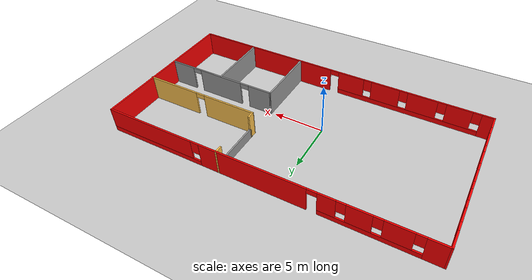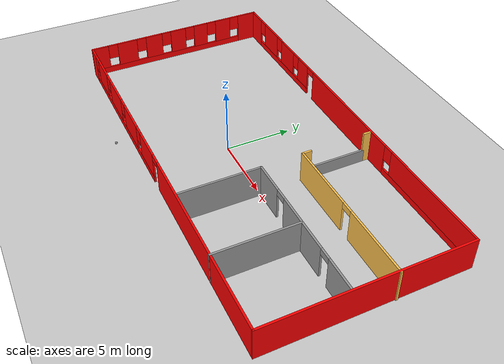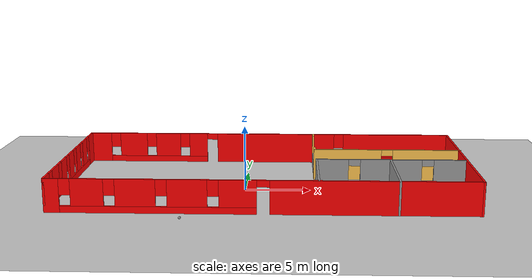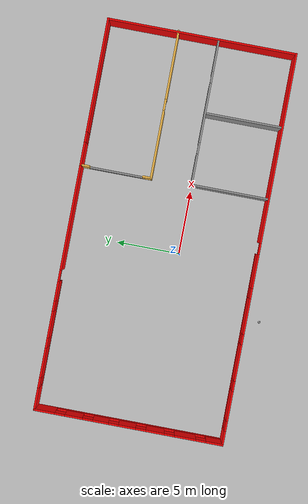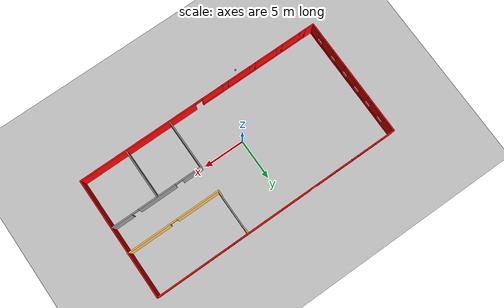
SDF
<sdf version="1.6">
 <world name="default">
  <light name="sun" type="directional">
   <pose>0 0 10 0 -0 0</pose>
   <diffuse>0.8 0.8 0.8 1</diffuse>
   <specular>0.2 0.2 0.2 1</specular>
   <attenuation>
    <range>1000</range>
    <constant>0.9</constant>
    <linear>0.01</linear>
    <quadratic>0.001</quadratic>
   </attenuation>
   <direction>-0.5 0.1 -0.9</direction>
  </light>
  <model name="ground_plane">
   <static>1</static>
   <link name="link">
    <collision name="collision">
     <geometry><plane><normal>0 0 1</normal><size>100 100</size></plane></geometry>
     <surface><friction><ode><mu>100</mu><mu2>50</mu2></ode></friction></surface>
    </collision>
    <visual name="visual">
     <cast_shadows>0</cast_shadows>
     <geometry><plane><normal>0 0 1</normal><size>100 100</size></plane></geometry>
     <material>
      <script><uri>file://media/materials/scripts/gazebo.material</uri><name>Gazebo/Grey</name></script>
     </material>
    </visual>
   </link>
  </model>
  <gravity>0 0 -9.8</gravity>
  <magnetic_field>6e-06 2.3e-05 -4.2e-05</magnetic_field>
  <atmosphere type="adiabatic"/>
  <physics name="default_physics" default="0" type="ode">
   <max_step_size>0.001</max_step_size>
   <real_time_factor>1</real_time_factor>
   <real_time_update_rate>1000</real_time_update_rate>
  </physics>
  <scene><ambient>0.4 0.4 0.4 1</ambient><background>0.7 0.7 0.7 1</background><shadows>1</shadows></scene>
  <spherical_coordinates>
   <surface_model>EARTH_WGS84</surface_model>
   <latitude_deg>0</latitude_deg>
   <longitude_deg>0</longitude_deg>
   <elevation>0</elevation>
   <heading_deg>0</heading_deg>
  </spherical_coordinates>
  <model name="my_building">
   <pose>1.5582 1.38276 0 0 -0 0</pose>
   <link name="Wall_31">
    <pose>-15.4662 0.001238 0 0 0 -1.5708</pose>
    <visual name="Wall_31_Visual_0">
     <pose>-6.66061 0 1.25 0 -0 0</pose>
     <geometry><box><size>1.67879 0.15 2.5</size></box></geometry>
     <material>
      <script><uri>file://media/materials/scripts/gazebo.material</uri><name>Gazebo/Grey</name></script>
      <ambient>1 0 0 1</ambient>
     </material>
     <meta><layer>0</layer></meta>
    </visual>
    <collision name="Wall_31_Collision_0">
     <geometry><box><size>1.67879 0.15 2.5</size></box></geometry>
     <pose>-6.66061 0 1.25 0 -0 0</pose>
    </collision>
    <visual name="Wall_31_Visual_1">
     <pose>0.839395 0 0.25 0 -0 0</pose>
     <geometry><box><size>13.3212 0.15 0.5</size></box></geometry>
     <material>
      <script><uri>file://media/materials/scripts/gazebo.material</uri><name>Gazebo/Grey</name></script>
      <ambient>1 0 0 1</ambient>
     </material>
     <meta><layer>0</layer></meta>
    </visual>
    <collision name="Wall_31_Collision_1">
     <geometry><box><size>13.3212 0.15 0.5</size></box></geometry>
     <pose>0.839395 0 0.25 0 -0 0</pose>
    </collision>
    <visual name="Wall_31_Visual_2">
     <pose>-4.32618 0 1.5 0 -0 0</pose>
     <geometry><box><size>1.39006 0.15 2</size></box></geometry>
     <material>
      <script><uri>file://media/materials/scripts/gazebo.material</uri><name>Gazebo/Grey</name></script>
      <ambient>1 0 0 1</ambient>
     </material>
     <meta><layer>0</layer></meta>
    </visual>
    <collision name="Wall_31_Collision_2">
     <geometry><box><size>1.39006 0.15 2</size></box></geometry>
     <pose>-4.32618 0 1.5 0 -0 0</pose>
    </collision>
    <visual name="Wall_31_Visual_3">
     <pose>-2.21216 0 1.5 0 -0 0</pose>
     <geometry><box><size>1.23797 0.15 2</size></box></geometry>
     <material>
      <script><uri>file://media/materials/scripts/gazebo.material</uri><name>Gazebo/Grey</name></script>
      <ambient>1 0 0 1</ambient>
     </material>
     <meta><layer>0</layer></meta>
    </visual>
    <collision name="Wall_31_Collision_3">
     <geometry><box><size>1.23797 0.15 2</size></box></geometry>
     <pose>-2.21216 0 1.5 0 -0 0</pose>
    </collision>
    <visual name="Wall_31_Visual_4">
     <pose>-0.113355 0 1.5 0 -0 0</pose>
     <geometry><box><size>1.35964 0.15 2</size></box></geometry>
     <material>
      <script><uri>file://media/materials/scripts/gazebo.material</uri><name>Gazebo/Grey</name></script>
      <ambient>1 0 0 1</ambient>
     </material>
     <meta><layer>0</layer></meta>
    </visual>
    <collision name="Wall_31_Collision_4">
     <geometry><box><size>1.35964 0.15 2</size></box></geometry>
     <pose>-0.113355 0 1.5 0 -0 0</pose>
    </collision>
    <visual name="Wall_31_Visual_5">
     <pose>2.09191 0 1.5 0 -0 0</pose>
     <geometry><box><size>1.4509 0.15 2</size></box></geometry>
     <material>
      <script><uri>file://media/materials/scripts/gazebo.material</uri><name>Gazebo/Grey</name></script>
      <ambient>1 0 0 1</ambient>
     </material>
     <meta><layer>0</layer></meta>
    </visual>
    <collision name="Wall_31_Collision_5">
     <geometry><box><size>1.4509 0.15 2</size></box></geometry>
     <pose>2.09191 0 1.5 0 -0 0</pose>
    </collision>
    <visual name="Wall_31_Visual_6">
     <pose>4.46448 0 1.5 0 -0 0</pose>
     <geometry><box><size>1.69423 0.15 2</size></box></geometry>
     <material>
      <script><uri>file://media/materials/scripts/gazebo.material</uri><name>Gazebo/Grey</name></script>
      <ambient>1 0 0 1</ambient>
     </material>
     <meta><layer>0</layer></meta>
    </visual>
    <collision name="Wall_31_Collision_6">
     <geometry><box><size>1.69423 0.15 2</size></box></geometry>
     <pose>4.46448 0 1.5 0 -0 0</pose>
    </collision>
    <visual name="Wall_31_Visual_7">
     <pose>6.8058 0 1.5 0 -0 0</pose>
     <geometry><box><size>1.3884 0.15 2</size></box></geometry>
     <material>
      <script><uri>file://media/materials/scripts/gazebo.material</uri><name>Gazebo/Grey</name></script>
      <ambient>1 0 0 1</ambient>
     </material>
     <meta><layer>0</layer></meta>
    </visual>
    <collision name="Wall_31_Collision_7">
     <geometry><box><size>1.3884 0.15 2</size></box></geometry>
     <pose>6.8058 0 1.5 0 -0 0</pose>
    </collision>
    <visual name="Wall_31_Visual_8">
     <pose>-5.42121 0 1.9 0 -0 0</pose>
     <geometry><box><size>0.8 0.15 1.2</size></box></geometry>
     <material>
      <script><uri>file://media/materials/scripts/gazebo.material</uri><name>Gazebo/Grey</name></script>
      <ambient>1 0 0 1</ambient>
     </material>
     <meta><layer>0</layer></meta>
    </visual>
    <collision name="Wall_31_Collision_8">
     <geometry><box><size>0.8 0.15 1.2</size></box></geometry>
     <pose>-5.42121 0 1.9 0 -0 0</pose>
    </collision>
    <visual name="Wall_31_Visual_9">
     <pose>-3.23115 0 1.9 0 -0 0</pose>
     <geometry><box><size>0.8 0.15 1.2</size></box></geometry>
     <material>
      <script><uri>file://media/materials/scripts/gazebo.material</uri><name>Gazebo/Grey</name></script>
      <ambient>1 0 0 1</ambient>
     </material>
     <meta><layer>0</layer></meta>
    </visual>
    <collision name="Wall_31_Collision_9">
     <geometry><box><size>0.8 0.15 1.2</size></box></geometry>
     <pose>-3.23115 0 1.9 0 -0 0</pose>
    </collision>
    <visual name="Wall_31_Visual_10">
     <pose>-1.19318 0 1.9 0 -0 0</pose>
     <geometry><box><size>0.8 0.15 1.2</size></box></geometry>
     <material>
      <script><uri>file://media/materials/scripts/gazebo.material</uri><name>Gazebo/Grey</name></script>
      <ambient>1 0 0 1</ambient>
     </material>
     <meta><layer>0</layer></meta>
    </visual>
    <collision name="Wall_31_Collision_10">
     <geometry><box><size>0.8 0.15 1.2</size></box></geometry>
     <pose>-1.19318 0 1.9 0 -0 0</pose>
    </collision>
    <visual name="Wall_31_Visual_11">
     <pose>0.966466 0 1.9 0 -0 0</pose>
     <geometry><box><size>0.8 0.15 1.2</size></box></geometry>
     <material>
      <script><uri>file://media/materials/scripts/gazebo.material</uri><name>Gazebo/Grey</name></script>
      <ambient>1 0 0 1</ambient>
     </material>
     <meta><layer>0</layer></meta>
    </visual>
    <collision name="Wall_31_Collision_11">
     <geometry><box><size>0.8 0.15 1.2</size></box></geometry>
     <pose>0.966466 0 1.9 0 -0 0</pose>
    </collision>
    <visual name="Wall_31_Visual_12">
     <pose>3.21736 0 1.9 0 -0 0</pose>
     <geometry><box><size>0.8 0.15 1.2</size></box></geometry>
     <material>
      <script><uri>file://media/materials/scripts/gazebo.material</uri><name>Gazebo/Grey</name></script>
      <ambient>1 0 0 1</ambient>
     </material>
     <meta><layer>0</layer></meta>
    </visual>
    <collision name="Wall_31_Collision_12">
     <geometry><box><size>0.8 0.15 1.2</size></box></geometry>
     <pose>3.21736 0 1.9 0 -0 0</pose>
    </collision>
    <visual name="Wall_31_Visual_13">
     <pose>5.7116 0 1.9 0 -0 0</pose>
     <geometry><box><size>0.8 0.15 1.2</size></box></geometry>
     <material>
      <script><uri>file://media/materials/scripts/gazebo.material</uri><name>Gazebo/Grey</name></script>
      <ambient>1 0 0 1</ambient>
     </material>
     <meta><layer>0</layer></meta>
    </visual>
    <collision name="Wall_31_Collision_13">
     <geometry><box><size>0.8 0.15 1.2</size></box></geometry>
     <pose>5.7116 0 1.9 0 -0 0</pose>
    </collision>
   </link>
   <link name="Wall_32">
    <pose>-0.041243 -7.42376 0 0 -0 0</pose>
    <visual name="Wall_32_Visual_0">
     <pose>-14.9238 0 1.25 0 -0 0</pose>
     <geometry><box><size>1.15241 0.15 2.5</size></box></geometry>
     <material>
      <script><uri>file://media/materials/scripts/gazebo.material</uri><name>Gazebo/Grey</name></script>
      <ambient>1 0 0 1</ambient>
     </material>
     <meta><layer>0</layer></meta>
    </visual>
    <collision name="Wall_32_Collision_0">
     <geometry><box><size>1.15241 0.15 2.5</size></box></geometry>
     <pose>-14.9238 0 1.25 0 -0 0</pose>
    </collision>
    <visual name="Wall_32_Visual_1">
     <pose>8.01244 0 1.25 0 -0 0</pose>
     <geometry><box><size>14.9751 0.15 2.5</size></box></geometry>
     <material>
      <script><uri>file://media/materials/scripts/gazebo.material</uri><name>Gazebo/Grey</name></script>
      <ambient>1 0 0 1</ambient>
     </material>
     <meta><layer>0</layer></meta>
    </visual>
    <collision name="Wall_32_Collision_1">
     <geometry><box><size>14.9751 0.15 2.5</size></box></geometry>
     <pose>8.01244 0 1.25 0 -0 0</pose>
    </collision>
    <visual name="Wall_32_Visual_2">
     <pose>-7.36135 0 0.25 0 -0 0</pose>
     <geometry><box><size>13.9725 0.15 0.5</size></box></geometry>
     <material>
      <script><uri>file://media/materials/scripts/gazebo.material</uri><name>Gazebo/Grey</name></script>
      <ambient>1 0 0 1</ambient>
     </material>
     <meta><layer>0</layer></meta>
    </visual>
    <collision name="Wall_32_Collision_2">
     <geometry><box><size>13.9725 0.15 0.5</size></box></geometry>
     <pose>-7.36135 0 0.25 0 -0 0</pose>
    </collision>
    <visual name="Wall_32_Visual_3">
     <pose>-12.3659 0 1.5 0 -0 0</pose>
     <geometry><box><size>2.36342 0.15 2</size></box></geometry>
     <material>
      <script><uri>file://media/materials/scripts/gazebo.material</uri><name>Gazebo/Grey</name></script>
      <ambient>1 0 0 1</ambient>
     </material>
     <meta><layer>0</layer></meta>
    </visual>
    <collision name="Wall_32_Collision_3">
     <geometry><box><size>2.36342 0.15 2</size></box></geometry>
     <pose>-12.3659 0 1.5 0 -0 0</pose>
    </collision>
    <visual name="Wall_32_Visual_4">
     <pose>-8.94391 0 1.5 0 -0 0</pose>
     <geometry><box><size>2.88052 0.15 2</size></box></geometry>
     <material>
      <script><uri>file://media/materials/scripts/gazebo.material</uri><name>Gazebo/Grey</name></script>
      <ambient>1 0 0 1</ambient>
     </material>
     <meta><layer>0</layer></meta>
    </visual>
    <collision name="Wall_32_Collision_4">
     <geometry><box><size>2.88052 0.15 2</size></box></geometry>
     <pose>-8.94391 0 1.5 0 -0 0</pose>
    </collision>
    <visual name="Wall_32_Visual_5">
     <pose>-5.2786 0 1.5 0 -0 0</pose>
     <geometry><box><size>2.8501 0.15 2</size></box></geometry>
     <material>
      <script><uri>file://media/materials/scripts/gazebo.material</uri><name>Gazebo/Grey</name></script>
      <ambient>1 0 0 1</ambient>
     </material>
     <meta><layer>0</layer></meta>
    </visual>
    <collision name="Wall_32_Collision_5">
     <geometry><box><size>2.8501 0.15 2</size></box></geometry>
     <pose>-5.2786 0 1.5 0 -0 0</pose>
    </collision>
    <visual name="Wall_32_Visual_6">
     <pose>-1.71433 0 1.5 0 -0 0</pose>
     <geometry><box><size>2.67843 0.15 2</size></box></geometry>
     <material>
      <script><uri>file://media/materials/scripts/gazebo.material</uri><name>Gazebo/Grey</name></script>
      <ambient>1 0 0 1</ambient>
     </material>
     <meta><layer>0</layer></meta>
    </visual>
    <collision name="Wall_32_Collision_6">
     <geometry><box><size>2.67843 0.15 2</size></box></geometry>
     <pose>-1.71433 0 1.5 0 -0 0</pose>
    </collision>
    <visual name="Wall_32_Visual_7">
     <pose>-13.9476 0 1.9 0 -0 0</pose>
     <geometry><box><size>0.8 0.15 1.2</size></box></geometry>
     <material>
      <script><uri>file://media/materials/scripts/gazebo.material</uri><name>Gazebo/Grey</name></script>
      <ambient>1 0 0 1</ambient>
     </material>
     <meta><layer>0</layer></meta>
    </visual>
    <collision name="Wall_32_Collision_7">
     <geometry><box><size>0.8 0.15 1.2</size></box></geometry>
     <pose>-13.9476 0 1.9 0 -0 0</pose>
    </collision>
    <visual name="Wall_32_Visual_8">
     <pose>-10.7842 0 1.9 0 -0 0</pose>
     <geometry><box><size>0.8 0.15 1.2</size></box></geometry>
     <material>
      <script><uri>file://media/materials/scripts/gazebo.material</uri><name>Gazebo/Grey</name></script>
      <ambient>1 0 0 1</ambient>
     </material>
     <meta><layer>0</layer></meta>
    </visual>
    <collision name="Wall_32_Collision_8">
     <geometry><box><size>0.8 0.15 1.2</size></box></geometry>
     <pose>-10.7842 0 1.9 0 -0 0</pose>
    </collision>
    <visual name="Wall_32_Visual_9">
     <pose>-7.10365 0 1.9 0 -0 0</pose>
     <geometry><box><size>0.8 0.15 1.2</size></box></geometry>
     <material>
      <script><uri>file://media/materials/scripts/gazebo.material</uri><name>Gazebo/Grey</name></script>
      <ambient>1 0 0 1</ambient>
     </material>
     <meta><layer>0</layer></meta>
    </visual>
    <collision name="Wall_32_Collision_9">
     <geometry><box><size>0.8 0.15 1.2</size></box></geometry>
     <pose>-7.10365 0 1.9 0 -0 0</pose>
    </collision>
    <visual name="Wall_32_Visual_10">
     <pose>-3.45355 0 1.9 0 -0 0</pose>
     <geometry><box><size>0.8 0.15 1.2</size></box></geometry>
     <material>
      <script><uri>file://media/materials/scripts/gazebo.material</uri><name>Gazebo/Grey</name></script>
      <ambient>1 0 0 1</ambient>
     </material>
     <meta><layer>0</layer></meta>
    </visual>
    <collision name="Wall_32_Collision_10">
     <geometry><box><size>0.8 0.15 1.2</size></box></geometry>
     <pose>-3.45355 0 1.9 0 -0 0</pose>
    </collision>
    <visual name="Wall_32_Visual_11">
     <pose>0.074882 0 2.25 0 -0 0</pose>
     <geometry><box><size>0.9 0.15 0.5</size></box></geometry>
     <material>
      <script><uri>file://media/materials/scripts/gazebo.material</uri><name>Gazebo/Grey</name></script>
      <ambient>1 0 0 1</ambient>
     </material>
     <meta><layer>0</layer></meta>
    </visual>
    <collision name="Wall_32_Collision_11">
     <geometry><box><size>0.9 0.15 0.5</size></box></geometry>
     <pose>0.074882 0 2.25 0 -0 0</pose>
    </collision>
   </link>
   <link name="Wall_35">
    <pose>-0.041243 7.42624 0 0 -0 0</pose>
    <visual name="Wall_35_Visual_0">
     <pose>-14.6044 0 1.25 0 -0 0</pose>
     <geometry><box><size>1.79118 0.15 2.5</size></box></geometry>
     <material>
      <script><uri>file://media/materials/scripts/gazebo.material</uri><name>Gazebo/Grey</name></script>
      <ambient>1 0 0 1</ambient>
     </material>
     <meta><layer>0</layer></meta>
    </visual>
    <collision name="Wall_35_Collision_0">
     <geometry><box><size>1.79118 0.15 2.5</size></box></geometry>
     <pose>-14.6044 0 1.25 0 -0 0</pose>
    </collision>
    <visual name="Wall_35_Visual_1">
     <pose>0.647397 0 1.25 0 -0 0</pose>
     <geometry><box><size>10.1003 0.15 2.5</size></box></geometry>
     <material>
      <script><uri>file://media/materials/scripts/gazebo.material</uri><name>Gazebo/Grey</name></script>
      <ambient>1 0 0 1</ambient>
     </material>
     <meta><layer>0</layer></meta>
    </visual>
    <collision name="Wall_35_Collision_1">
     <geometry><box><size>10.1003 0.15 2.5</size></box></geometry>
     <pose>0.647397 0 1.25 0 -0 0</pose>
    </collision>
    <visual name="Wall_35_Visual_2">
     <pose>-9.50579 0 0.25 0 -0 0</pose>
     <geometry><box><size>8.40606 0.15 0.5</size></box></geometry>
     <material>
      <script><uri>file://media/materials/scripts/gazebo.material</uri><name>Gazebo/Grey</name></script>
      <ambient>1 0 0 1</ambient>
     </material>
     <meta><layer>0</layer></meta>
    </visual>
    <collision name="Wall_35_Collision_2">
     <geometry><box><size>8.40606 0.15 0.5</size></box></geometry>
     <pose>-9.50579 0 0.25 0 -0 0</pose>
    </collision>
    <visual name="Wall_35_Visual_3">
     <pose>10.5988 0 0.25 0 -0 0</pose>
     <geometry><box><size>9.80245 0.15 0.5</size></box></geometry>
     <material>
      <script><uri>file://media/materials/scripts/gazebo.material</uri><name>Gazebo/Grey</name></script>
      <ambient>1 0 0 1</ambient>
     </material>
     <meta><layer>0</layer></meta>
    </visual>
    <collision name="Wall_35_Collision_3">
     <geometry><box><size>9.80245 0.15 0.5</size></box></geometry>
     <pose>10.5988 0 0.25 0 -0 0</pose>
    </collision>
    <visual name="Wall_35_Visual_4">
     <pose>-11.7423 0 1.5 0 -0 0</pose>
     <geometry><box><size>2.333 0.15 2</size></box></geometry>
     <material>
      <script><uri>file://media/materials/scripts/gazebo.material</uri><name>Gazebo/Grey</name></script>
      <ambient>1 0 0 1</ambient>
     </material>
     <meta><layer>0</layer></meta>
    </visual>
    <collision name="Wall_35_Collision_4">
     <geometry><box><size>2.333 0.15 2</size></box></geometry>
     <pose>-11.7423 0 1.5 0 -0 0</pose>
    </collision>
    <visual name="Wall_35_Visual_5">
     <pose>-8.71578 0 1.5 0 -0 0</pose>
     <geometry><box><size>2.12008 0.15 2</size></box></geometry>
     <material>
      <script><uri>file://media/materials/scripts/gazebo.material</uri><name>Gazebo/Grey</name></script>
      <ambient>1 0 0 1</ambient>
     </material>
     <meta><layer>0</layer></meta>
    </visual>
    <collision name="Wall_35_Collision_5">
     <geometry><box><size>2.12008 0.15 2</size></box></geometry>
     <pose>-8.71578 0 1.5 0 -0 0</pose>
    </collision>
    <visual name="Wall_35_Visual_6">
     <pose>-6.07924 0 1.5 0 -0 0</pose>
     <geometry><box><size>1.55298 0.15 2</size></box></geometry>
     <material>
      <script><uri>file://media/materials/scripts/gazebo.material</uri><name>Gazebo/Grey</name></script>
      <ambient>1 0 0 1</ambient>
     </material>
     <meta><layer>0</layer></meta>
    </visual>
    <collision name="Wall_35_Collision_6">
     <geometry><box><size>1.55298 0.15 2</size></box></geometry>
     <pose>-6.07924 0 1.5 0 -0 0</pose>
    </collision>
    <visual name="Wall_35_Visual_7">
     <pose>-6.07924 0 1.5 0 -0 0</pose>
     <geometry><box><size>1.55298 0.15 2</size></box></geometry>
     <material>
      <script><uri>file://media/materials/scripts/gazebo.material</uri><name>Gazebo/Grey</name></script>
      <ambient>1 0 0 1</ambient>
     </material>
     <meta><layer>0</layer></meta>
    </visual>
    <collision name="Wall_35_Collision_7">
     <geometry><box><size>1.55298 0.15 2</size></box></geometry>
     <pose>-6.07924 0 1.5 0 -0 0</pose>
    </collision>
    <visual name="Wall_35_Visual_8">
     <pose>10.9988 0 1.5 0 -0 0</pose>
     <geometry><box><size>9.00245 0.15 2</size></box></geometry>
     <material>
      <script><uri>file://media/materials/scripts/gazebo.material</uri><name>Gazebo/Grey</name></script>
      <ambient>1 0 0 1</ambient>
     </material>
     <meta><layer>0</layer></meta>
    </visual>
    <collision name="Wall_35_Collision_8">
     <geometry><box><size>9.00245 0.15 2</size></box></geometry>
     <pose>10.9988 0 1.5 0 -0 0</pose>
    </collision>
    <visual name="Wall_35_Visual_9">
     <pose>-13.3088 0 1.9 0 -0 0</pose>
     <geometry><box><size>0.8 0.15 1.2</size></box></geometry>
     <material>
      <script><uri>file://media/materials/scripts/gazebo.material</uri><name>Gazebo/Grey</name></script>
      <ambient>1 0 0 1</ambient>
     </material>
     <meta><layer>0</layer></meta>
    </visual>
    <collision name="Wall_35_Collision_9">
     <geometry><box><size>0.8 0.15 1.2</size></box></geometry>
     <pose>-13.3088 0 1.9 0 -0 0</pose>
    </collision>
    <visual name="Wall_35_Visual_10">
     <pose>6.09755 0 1.9 0 -0 0</pose>
     <geometry><box><size>0.8 0.15 1.2</size></box></geometry>
     <material>
      <script><uri>file://media/materials/scripts/gazebo.material</uri><name>Gazebo/Grey</name></script>
      <ambient>1 0 0 1</ambient>
     </material>
     <meta><layer>0</layer></meta>
    </visual>
    <collision name="Wall_35_Collision_10">
     <geometry><box><size>0.8 0.15 1.2</size></box></geometry>
     <pose>6.09755 0 1.9 0 -0 0</pose>
    </collision>
    <visual name="Wall_35_Visual_11">
     <pose>-10.1758 0 1.9 0 -0 0</pose>
     <geometry><box><size>0.8 0.15 1.2</size></box></geometry>
     <material>
      <script><uri>file://media/materials/scripts/gazebo.material</uri><name>Gazebo/Grey</name></script>
      <ambient>1 0 0 1</ambient>
     </material>
     <meta><layer>0</layer></meta>
    </visual>
    <collision name="Wall_35_Collision_11">
     <geometry><box><size>0.8 0.15 1.2</size></box></geometry>
     <pose>-10.1758 0 1.9 0 -0 0</pose>
    </collision>
    <visual name="Wall_35_Visual_12">
     <pose>-7.25574 0 1.9 0 -0 0</pose>
     <geometry><box><size>0.8 0.15 1.2</size></box></geometry>
     <material>
      <script><uri>file://media/materials/scripts/gazebo.material</uri><name>Gazebo/Grey</name></script>
      <ambient>1 0 0 1</ambient>
     </material>
     <meta><layer>0</layer></meta>
    </visual>
    <collision name="Wall_35_Collision_12">
     <geometry><box><size>0.8 0.15 1.2</size></box></geometry>
     <pose>-7.25574 0 1.9 0 -0 0</pose>
    </collision>
    <visual name="Wall_35_Visual_13">
     <pose>-4.85275 0 2.25 0 -0 0</pose>
     <geometry><box><size>0.9 0.15 0.5</size></box></geometry>
     <material>
      <script><uri>file://media/materials/scripts/gazebo.material</uri><name>Gazebo/Grey</name></script>
      <ambient>1 0 0 1</ambient>
     </material>
     <meta><layer>0</layer></meta>
    </visual>
    <collision name="Wall_35_Collision_13">
     <geometry><box><size>0.9 0.15 0.5</size></box></geometry>
     <pose>-4.85275 0 2.25 0 -0 0</pose>
    </collision>
    <visual name="Wall_35_Visual_14">
     <pose>-4.85275 0 2.25 0 -0 0</pose>
     <geometry><box><size>0.9 0.15 0.5</size></box></geometry>
     <material>
      <script><uri>file://media/materials/scripts/gazebo.material</uri><name>Gazebo/Grey</name></script>
      <ambient>1 0 0 1</ambient>
     </material>
     <meta><layer>0</layer></meta>
    </visual>
    <collision name="Wall_35_Collision_14">
     <geometry><box><size>0.9 0.15 0.5</size></box></geometry>
     <pose>-4.85275 0 2.25 0 -0 0</pose>
    </collision>
   </link>
   <link name="Wall_37">
    <collision name="Wall_37_Collision">
     <geometry><box><size>15 0.15 2.5</size></box></geometry>
     <pose>0 0 1.25 0 -0 0</pose>
    </collision>
    <visual name="Wall_37_Visual">
     <pose>0 0 1.25 0 -0 0</pose>
     <geometry><box><size>15 0.15 2.5</size></box></geometry>
     <material>
      <script><uri>file://media/materials/scripts/gazebo.material</uri><name>Gazebo/Grey</name></script>
      <ambient>1 0 0 1</ambient>
     </material>
     <meta><layer>0</layer></meta>
    </visual>
    <pose>15.3838 0.001238 0 0 0 -1.5708</pose>
   </link>
   <link name="Wall_39">
    <collision name="Wall_39_Collision">
     <geometry><box><size>6.25 0.15 2.5</size></box></geometry>
     <pose>0 0 1.25 0 -0 0</pose>
    </collision>
    <visual name="Wall_39_Visual">
     <pose>0 0 1.25 0 -0 0</pose>
     <geometry><box><size>6.25 0.15 2.5</size></box></geometry>
     <material>
      <script><uri>file://media/materials/scripts/gazebo.material</uri><name>Gazebo/Grey</name></script>
      <ambient>0.619608 0.619608 0.619608 1</ambient>
     </material>
     <meta><layer>0</layer></meta>
    </visual>
    <pose>3.92708 -4.36374 0 0 -0 1.5708</pose>
   </link>
   <link name="Wall_40">
    <pose>9.60208 -1.31374 0 0 -0 0</pose>
    <visual name="Wall_40_Visual_0">
     <pose>-4.49267 0 1.25 0 -0 0</pose>
     <geometry><box><size>2.51466 0.15 2.5</size></box></geometry>
     <material>
      <script><uri>file://media/materials/scripts/gazebo.material</uri><name>Gazebo/Grey</name></script>
      <ambient>0.619608 0.619608 0.619608 1</ambient>
     </material>
     <meta><layer>0</layer></meta>
    </visual>
    <collision name="Wall_40_Collision_0">
     <geometry><box><size>2.51466 0.15 2.5</size></box></geometry>
     <pose>-4.49267 0 1.25 0 -0 0</pose>
    </collision>
    <visual name="Wall_40_Visual_1">
     <pose>0.013072 0 1.25 0 -0 0</pose>
     <geometry><box><size>4.69682 0.15 2.5</size></box></geometry>
     <material>
      <script><uri>file://media/materials/scripts/gazebo.material</uri><name>Gazebo/Grey</name></script>
      <ambient>0.619608 0.619608 0.619608 1</ambient>
     </material>
     <meta><layer>0</layer></meta>
    </visual>
    <collision name="Wall_40_Collision_1">
     <geometry><box><size>4.69682 0.15 2.5</size></box></geometry>
     <pose>0.013072 0 1.25 0 -0 0</pose>
    </collision>
    <visual name="Wall_40_Visual_2">
     <pose>4.50574 0 1.25 0 -0 0</pose>
     <geometry><box><size>2.48852 0.15 2.5</size></box></geometry>
     <material>
      <script><uri>file://media/materials/scripts/gazebo.material</uri><name>Gazebo/Grey</name></script>
      <ambient>0.619608 0.619608 0.619608 1</ambient>
     </material>
     <meta><layer>0</layer></meta>
    </visual>
    <collision name="Wall_40_Collision_2">
     <geometry><box><size>2.48852 0.15 2.5</size></box></geometry>
     <pose>4.50574 0 1.25 0 -0 0</pose>
    </collision>
    <visual name="Wall_40_Visual_3">
     <pose>-2.78534 0 2.25 0 -0 0</pose>
     <geometry><box><size>0.9 0.15 0.5</size></box></geometry>
     <material>
      <script><uri>file://media/materials/scripts/gazebo.material</uri><name>Gazebo/Grey</name></script>
      <ambient>0.619608 0.619608 0.619608 1</ambient>
     </material>
     <meta><layer>0</layer></meta>
    </visual>
    <collision name="Wall_40_Collision_3">
     <geometry><box><size>0.9 0.15 0.5</size></box></geometry>
     <pose>-2.78534 0 2.25 0 -0 0</pose>
    </collision>
    <visual name="Wall_40_Visual_4">
     <pose>2.81148 0 2.25 0 -0 0</pose>
     <geometry><box><size>0.9 0.15 0.5</size></box></geometry>
     <material>
      <script><uri>file://media/materials/scripts/gazebo.material</uri><name>Gazebo/Grey</name></script>
      <ambient>0.619608 0.619608 0.619608 1</ambient>
     </material>
     <meta><layer>0</layer></meta>
    </visual>
    <collision name="Wall_40_Collision_4">
     <geometry><box><size>0.9 0.15 0.5</size></box></geometry>
     <pose>2.81148 0 2.25 0 -0 0</pose>
    </collision>
   </link>
   <link name="Wall_43">
    <collision name="Wall_43_Collision">
     <geometry><box><size>6.25 0.15 2.5</size></box></geometry>
     <pose>0 0 1.25 0 -0 0</pose>
    </collision>
    <visual name="Wall_43_Visual">
     <pose>0 0 1.25 0 -0 0</pose>
     <geometry><box><size>6.25 0.15 2.5</size></box></geometry>
     <material>
      <script><uri>file://media/materials/scripts/gazebo.material</uri><name>Gazebo/Grey</name></script>
      <ambient>0.619608 0.619608 0.619608 1</ambient>
     </material>
     <meta><layer>0</layer></meta>
    </visual>
    <pose>9.58473 -4.38024 0 0 0 -1.5708</pose>
   </link>
   <link name="Wall_45">
    <collision name="Wall_45_Collision">
     <geometry><box><size>0.75 0.15 2.5</size></box></geometry>
     <pose>0 0 1.25 0 -0 0</pose>
    </collision>
    <visual name="Wall_45_Visual">
     <pose>0 0 1.25 0 -0 0</pose>
     <geometry><box><size>0.75 0.15 2.5</size></box></geometry>
     <material>
      <script><uri>file://media/materials/scripts/gazebo.material</uri><name>Gazebo/Grey</name></script>
      <ambient>1 0.764706 0.305882 1</ambient>
     </material>
     <meta><layer>0</layer></meta>
    </visual>
    <pose>3.86576 7.13024 0 0 0 -1.5708</pose>
   </link>
   <link name="Wall_46">
    <collision name="Wall_46_Collision">
     <geometry><box><size>4.5 0.15 1</size></box></geometry>
     <pose>0 0 0.5 0 -0 0</pose>
    </collision>
    <visual name="Wall_46_Visual">
     <pose>0 0 0.5 0 -0 0</pose>
     <geometry><box><size>4.5 0.15 1</size></box></geometry>
     <material>
      <script><uri>file://media/materials/scripts/gazebo.material</uri><name>Gazebo/Grey</name></script>
      <ambient>1 1 1 1</ambient>
     </material>
     <meta><layer>0</layer></meta>
    </visual>
    <pose>3.86576 4.65524 0 0 0 -1.5708</pose>
   </link>
   <link name="Wall_47">
    <collision name="Wall_47_Collision">
     <geometry><box><size>0.75 0.15 2.5</size></box></geometry>
     <pose>0 0 1.25 0 -0 0</pose>
    </collision>
    <visual name="Wall_47_Visual">
     <pose>0 0 1.25 0 -0 0</pose>
     <geometry><box><size>0.75 0.15 2.5</size></box></geometry>
     <material>
      <script><uri>file://media/materials/scripts/gazebo.material</uri><name>Gazebo/Grey</name></script>
      <ambient>1 0.764706 0.305882 1</ambient>
     </material>
     <meta><layer>0</layer></meta>
    </visual>
    <pose>3.866 2.18012 0 0 0 -1.56998</pose>
   </link>
   <link name="Wall_48">
    <pose>9.66624 1.88 0 0 -0 0</pose>
    <visual name="Wall_48_Visual_0">
     <pose>-3.17284 0 1.25 0 -0 0</pose>
     <geometry><box><size>5.40432 0.15 2.5</size></box></geometry>
     <material>
      <script><uri>file://media/materials/scripts/gazebo.material</uri><name>Gazebo/Grey</name></script>
      <ambient>1 0.764706 0.305882 1</ambient>
     </material>
     <meta><layer>0</layer></meta>
    </visual>
    <collision name="Wall_48_Collision_0">
     <geometry><box><size>5.40432 0.15 2.5</size></box></geometry>
     <pose>-3.17284 0 1.25 0 -0 0</pose>
    </collision>
    <visual name="Wall_48_Visual_1">
     <pose>3.15216 0 1.25 0 -0 0</pose>
     <geometry><box><size>5.44568 0.15 2.5</size></box></geometry>
     <material>
      <script><uri>file://media/materials/scripts/gazebo.material</uri><name>Gazebo/Grey</name></script>
      <ambient>1 0.764706 0.305882 1</ambient>
     </material>
     <meta><layer>0</layer></meta>
    </visual>
    <collision name="Wall_48_Collision_1">
     <geometry><box><size>5.44568 0.15 2.5</size></box></geometry>
     <pose>3.15216 0 1.25 0 -0 0</pose>
    </collision>
    <visual name="Wall_48_Visual_2">
     <pose>-0.020676 0 2.25 0 -0 0</pose>
     <geometry><box><size>0.9 0.15 0.5</size></box></geometry>
     <material>
      <script><uri>file://media/materials/scripts/gazebo.material</uri><name>Gazebo/Grey</name></script>
      <ambient>1 0.764706 0.305882 1</ambient>
     </material>
     <meta><layer>0</layer></meta>
    </visual>
    <collision name="Wall_48_Collision_2">
     <geometry><box><size>0.9 0.15 0.5</size></box></geometry>
     <pose>-0.020676 0 2.25 0 -0 0</pose>
    </collision>
   </link>
   <static>1</static>
  </model>
  <model name="my_ball">
   <link name="link_0">
    <inertial>
     <mass>1</mass>
     <inertia><ixx>0.1</ixx><ixy>0</ixy><ixz>0</ixz><iyy>0.1</iyy><iyz>0</iyz><izz>0.1</izz></inertia>
     <pose>0 0 0.1 0 -0 0</pose>
    </inertial>
    <visual name="visual">
     <geometry><sphere><radius>0.1</radius></sphere></geometry>
     <material>
      <lighting>1</lighting>
      <script><uri>file://media/materials/scripts/gazebo.material</uri><name>Gazebo/Grey</name></script>
      <shader type="pixel"><normal_map>__default__</normal_map></shader>
      <ambient>1 1 1 1</ambient>
      <diffuse>1 1 1 1</diffuse>
      <specular>1 1 1 1</specular>
      <emissive>1 1 1 1</emissive>
     </material>
    </visual>
    <collision name="collision">
     <geometry><sphere><radius>0.1</radius></sphere></geometry>
     <surface>
      <friction>
       <ode><mu>1</mu><mu2>1</mu2><fdir1>0 0 0</fdir1><slip1>0</slip1><slip2>0</slip2></ode>
       <torsional>
        <coefficient>1</coefficient>
        <patch_radius>0</patch_radius>
        <surface_radius>0</surface_radius>
        <use_patch_radius>1</use_patch_radius>
        <ode><slip>0</slip></ode>
       </torsional>
      </friction>
      <bounce><restitution_coefficient>0</restitution_coefficient><threshold>1e+06</threshold></bounce>
      <contact>
       <collide_without_contact>0</collide_without_contact>
       <collide_without_contact_bitmask>1</collide_without_contact_bitmask>
       <collide_bitmask>1</collide_bitmask>
       <ode>
        <soft_cfm>0</soft_cfm>
        <soft_erp>0.2</soft_erp>
        <kp>1e+13</kp>
        <kd>1</kd>
        <max_vel>0.01</max_vel>
        <min_depth>0</min_depth>
       </ode>
       <bullet>
        <split_impulse>1</split_impulse>
        <split_impulse_penetration_threshold>-0.01</split_impulse_penetration_threshold>
        <soft_cfm>0</soft_cfm>
        <soft_erp>0.2</soft_erp>
        <kp>1e+13</kp>
        <kd>1</kd>
       </bullet>
      </contact>
     </surface>
    </collision>
   </link>
   <static>0</static>
   <pose>-4.15765 -7.29317 0.1 0 -0 0</pose>
  </model>
 </world>
</sdf>
